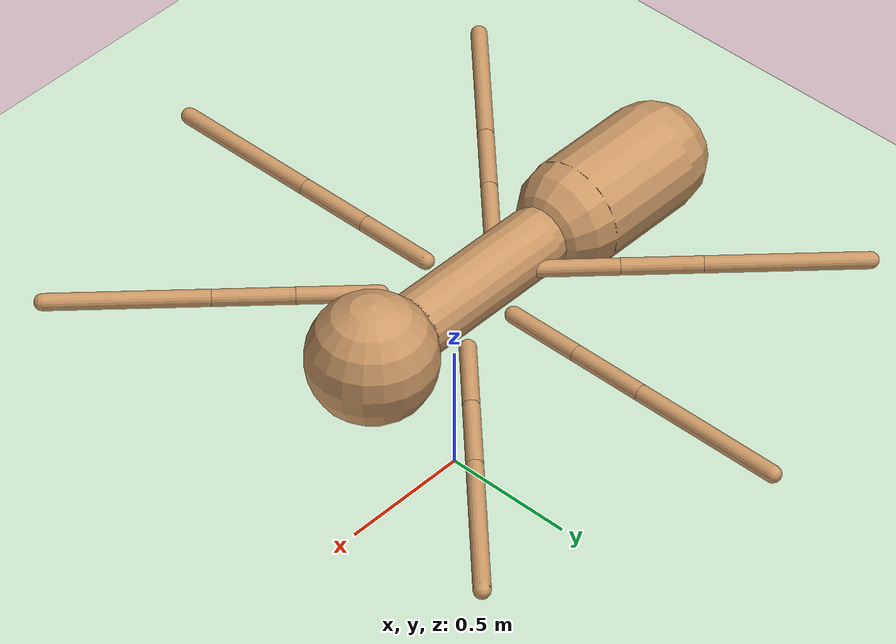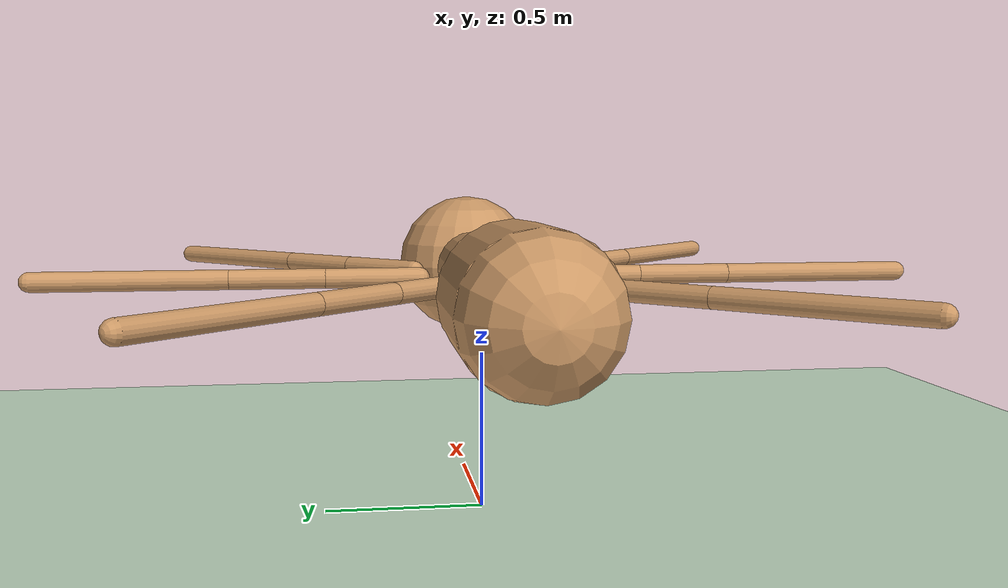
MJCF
<mujoco model="ant">
  <compiler angle="degree" coordinate="local" inertiafromgeom="true"/>
  <option integrator="RK4" timestep="0.002"/>
  <custom>
    <numeric data="0.0 0.0 0.55 1.0 0.0 0.0 0.0 0.0 1.0 0.0 -1.0 0.0 -1.0 0.0 1.0" name="init_qpos"/>
  </custom>
  <default>
    <joint armature="1" damping="1" limited="true"/>
    <geom conaffinity="0" condim="3" density="5.0" friction="1 0.5 0.5" margin="0.01" rgba="0.8 0.6 0.4 1"/>
  </default>
  <asset>
    <texture builtin="gradient" height="100" rgb1="1 1 1" rgb2="0 0 0" type="skybox" width="100"/>
    <texture builtin="flat" height="1278" mark="cross" markrgb="1 1 1" name="texgeom" random="0.01" rgb1="0.8 0.6 0.4" rgb2="0.8 0.6 0.4" type="cube" width="127"/>
    <texture builtin="checker" height="100" name="texplane" rgb1="0 0 0" rgb2="0.8 0.8 0.8" type="2d" width="100"/>
    <material name="MatPlane" reflectance="0.5" shininess="1" specular="1" texrepeat="60 60" texture="texplane"/>
    <material name="geom" texture="texgeom" texuniform="true"/>
  </asset>
  <worldbody>
    <light cutoff="100" diffuse="1 1 1" dir="-0 0 -1.3" directional="true" exponent="1" pos="0 0 1.3" specular=".1 .1 .1"/>
    <geom conaffinity="1" condim="6" material="MatPlane" name="floor" pos="0 0 0" rgba="0.8 0.9 0.8 1" size="40 40 40"  type="plane"/>
    <body pos="0 0 0.75">
      <!--몸통-->
      <geom name="torso_geom" fromto ="-0.4 0.0 0.0 0.2 0.0 0.0" size="0.12" type="capsule"/>

      <!--머리-->
      <geom name="head_geom" pos ="0.4 0 0" size="0.23" type="sphere"/>

      <geom name="tail_geom" fromto ="-1.0 0 0 -0.6 0 0.0" size="0.2" type="capsule"/>

      <!--다리1-->
      <body pos="0.15 0.2 0">
        <joint axis="0 0 1" name="joint_leg_left_forward" pos="0.0 0.0 0.0" range="-25 25" type="hinge"/>
        <geom fromto="0.0 0.0 0.0 0.2 0.2 0.0" name="aux_left_forward_geom" size="0.03" type="capsule"/>
        <body pos="0.2 0.2 0">

          <geom fromto="0.0 0.0 0.0 0.2 0.2 0.0" name="leg_left_forward_geom" size="0.03" type="capsule"/>
          <body pos="0.2 0.2 0">
            <joint axis="-1 1 0" name="joint_ankle_left_forward" pos="0.0 0.0 0.0" range="30 100" type="hinge"/>
            <geom fromto="0.0 0.0 0.0 0.4 0.4 0.0" name="ankle_left_forward_geom" size="0.03" type="capsule"/>
          </body>
        </body>
      </body>

      <!--다리2-->
      <body pos="-0.075 0.2 0">
        <joint axis="0 0 1" name="joint_leg_left_middle" pos="0.0 0 0.0" range="-25 25" type="hinge"/>
        <geom fromto="0.0 0.0 0.0 0.0 0.28284 0.0" name="aux_left_middle_geom" size="0.03" type="capsule"/>
        <body pos="0.0 0.28284 0">

          <geom fromto="0.0 0.0 0.0 0.0 0.28284 0.0" name="leg_left_middle_geom" size="0.03" type="capsule"/>
          <body pos="0.0 0.28284 0">
            <joint axis="-1 0 0" name="joint_ankle_left_middle" pos="0.0 0 0.0" range="30 100" type="hinge"/>
            <geom fromto="0.0 0.56568 0.0 0 0 0.0" name="ankle_left_middle_geom" size="0.03" type="capsule"/>
          </body>
        </body>
      </body>

      <!--다리3-->
      <body pos="-0.3 0.1 0">
        <joint axis="0 0 1" name="joint_leg_left_backward" pos="0.0 0.0 0.0" range="-25 25" type="hinge"/>
        <geom fromto="0.0 0.0 0.0 -0.2 0.2 0.0" name="aux_left_backward_geom" size="0.03" type="capsule"/>
        <body pos="-0.2 0.2 0">

          <geom fromto="0.0 0.0 0.0 -0.2 0.2 0.0" name="leg_left_backward_geom" size="0.03" type="capsule"/>
          <body pos="-0.2 0.2 0">
            <joint axis="-1 -1 0" name="joint_ankle_left_backward" pos="0.0 0.0 0.0" range="30 100" type="hinge"/>
            <geom fromto="0.0 0.0 0.0 -0.4 0.4 0.0" name="ankle_left_backward_geom" size="0.03" type="capsule"/>
          </body>
        </body>
      </body>

      <!--다리 4-->
      <body pos="0.15 -0.2 0">
        <joint axis="0 0 -1" name="joint_leg_right_forward" pos="0.0 0.0 0.0" range="-25 25" type="hinge"/>
        <geom fromto="0.0 0.0 0.0 0.2 -0.2 0.0" name="aux_right_forward_geom" size="0.03" type="capsule"/>
        <body pos="0.2 -0.2 0">

          <geom fromto="0.0 0.0 0.0 0.2 -0.2 0.0" name="leg_right_forward_geom" size="0.03" type="capsule"/>
          <body pos="0.2 -0.2 0">
            <joint axis="1 1 0" name="joint_ankle_right_forward" pos="0.0 0.0 0.0" range="30 100" type="hinge"/>
            <geom fromto="0.0 0.0 0.0 0.4 -0.4 0.0" name="ankle_right_forward_geom" size="0.03" type="capsule"/>
          </body>
        </body>
      </body>

      <!--다리 5-->
      <body pos="-0.075 -0.2 0">
        <joint axis="0 0 -1" name="joint_leg_right_middle" pos="0.0 0.0 0.0" range="-25 25" type="hinge"/>
        <geom fromto="0.0 0 0.0 0 -0.28284 0.0" name="aux_right_middle_geom" size="0.03" type="capsule"/>
        <body pos="0 -0.28284 0">

          <geom fromto="0.0 0 0.0 0 -0.28284 0.0" name="leg_right_middle_geom" size="0.03" type="capsule"/>
          <body pos="0 -0.28284 0">
            <joint axis="1 0 0" name="joint_ankle_right_middle" pos="0.0 0.0 0.0" range="30 100" type="hinge"/>
            <geom fromto="0.0 -0.56568 0.0 0 0 0.0" name="ankle_right_middle_geom" size="0.03" type="capsule"/>
          </body>
        </body>
      </body>

      <!--다리6-->
      <body pos="-0.3 -0.1 0">
        <joint axis="0 0 -1" name="joint_leg_right_backward" pos="0.0 0.0 0.0" range="-25 25" type="hinge"/>
        <geom fromto="0.0 0.0 0.0 -0.2 -0.2 0.0" name="aux_right_backward_geom" size="0.03" type="capsule"/>
        <body pos="-0.2 -0.2 0">

          <geom fromto="0.0 0.0 0.0 -0.2 -0.2 0.0" name="leg_right_backward_geom" size="0.03" type="capsule"/>
          <body pos="-0.2 -0.2 0">
            <joint axis="1 -1 0" name="joint_ankle_right_backward" pos="0.0 0.0 0.0" range="30 100" type="hinge"/>
            <geom fromto="0.0 0.0 0.0 -0.4 -0.4 0.0" name="ankle_right_backward_geom" size="0.03" type="capsule"/>
          </body>
        </body>
      </body>

    </body>
  </worldbody>

  <actuator>

    <motor ctrllimited="true" ctrlrange="-1.0 1.0" joint="joint_leg_left_forward" gear="101"/>
    <motor ctrllimited="true" ctrlrange="-1.00 1.00" joint="joint_ankle_left_forward" gear="150"/>

    <motor ctrllimited="true" ctrlrange="-1.0 1.0" joint="joint_leg_left_middle" gear="101"/>
    <motor ctrllimited="true" ctrlrange="-1.00 1.00" joint="joint_ankle_left_middle" gear="150"/>

    <motor ctrllimited="true" ctrlrange="-1.0 1.0" joint="joint_leg_left_backward" gear="101"/>
    <motor ctrllimited="true" ctrlrange="-1.00 1.00" joint="joint_ankle_left_backward" gear="150"/>

    <motor ctrllimited="true" ctrlrange="-1.0 1.0" joint="joint_leg_right_forward" gear="101"/>
    <motor ctrllimited="true" ctrlrange="-1.00 1.00" joint="joint_ankle_right_forward" gear="150"/>

    <motor ctrllimited="true" ctrlrange="-1.0 1.0" joint="joint_leg_right_middle" gear="101"/>
    <motor ctrllimited="true" ctrlrange="-1.00 1.00" joint="joint_ankle_right_middle" gear="150"/>

    <motor ctrllimited="true" ctrlrange="-1.0 1.0" joint="joint_leg_right_backward" gear="101"/>
    <motor ctrllimited="true" ctrlrange="-1.00 1.00" joint="joint_ankle_right_backward" gear="150"/>

  </actuator>

</mujoco>
